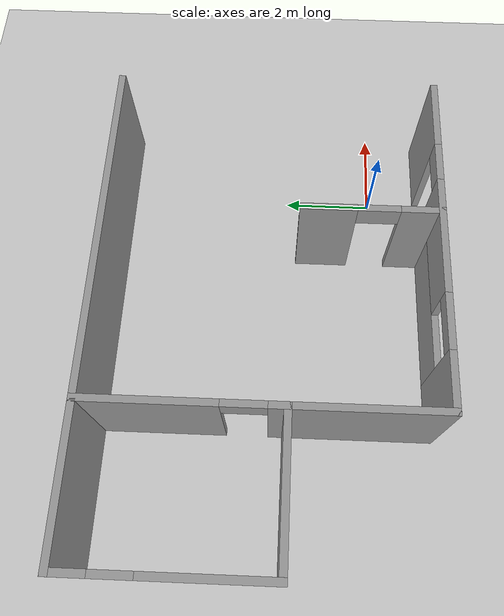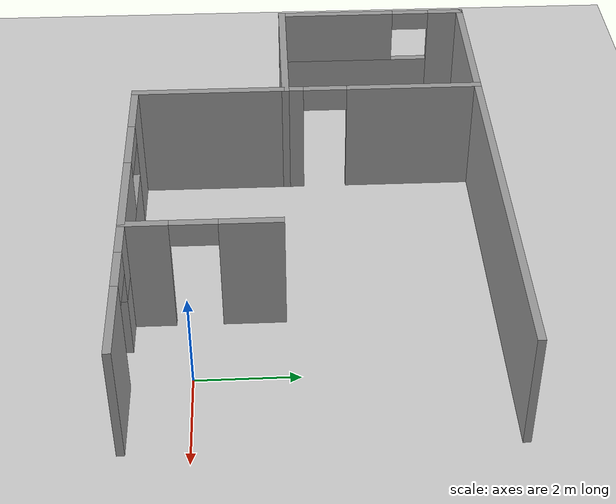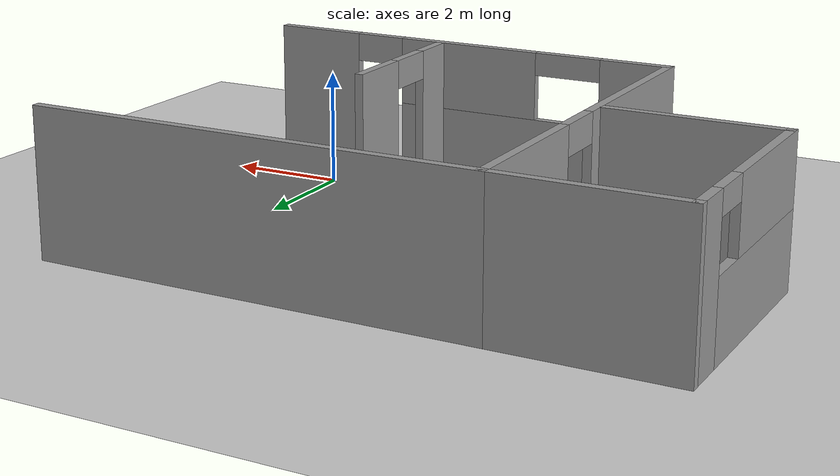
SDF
<sdf version="1.6">
 <world name="default">
  <model name="ground_plane">
   <static>1</static>
   <link name="link">
    <collision name="collision">
     <geometry><plane><normal>0 0 1</normal><size>100 100</size></plane></geometry>
     <surface><friction><ode><mu>100</mu><mu2>50</mu2></ode></friction></surface>
    </collision>
    <visual name="visual">
     <cast_shadows>0</cast_shadows>
     <geometry><plane><normal>0 0 1</normal><size>100 100</size></plane></geometry>
     <material>
      <script><uri>file://media/materials/scripts/gazebo.material</uri><name>Gazebo/Grey</name></script>
     </material>
    </visual>
   </link>
  </model>
  <model name="House">
   <link name="Wall_103">
    <pose>-6.5 6.45 0 0 -0 3.14159</pose>
    <visual name="Wall_103_Visual">
     <pose>0 0 1.25 0 -0 0</pose>
     <geometry><box><size>3.15 0.15 2.5</size></box></geometry>
     <material>
      <script><uri>file://media/materials/scripts/gazebo.material</uri><name>Gazebo/Grey</name></script>
      <ambient>1 1 1 1</ambient>
      <shader type="pixel"/>
      <diffuse>0.7 0.7 0.7 1</diffuse>
      <specular>0.01 0.01 0.01 1</specular>
      <emissive>0 0 0 1</emissive>
     </material>
     <meta><layer>0</layer></meta>
    </visual>
    <collision name="Wall_103_Collision">
     <pose>0 0 1.25 0 -0 0</pose>
     <geometry><box><size>3.15 0.15 2.5</size></box></geometry>
     <surface>
      <friction>
       <ode><mu>1</mu><mu2>1</mu2><fdir1>0 0 0</fdir1><slip1>0</slip1><slip2>0</slip2></ode>
       <torsional>
        <coefficient>1</coefficient>
        <patch_radius>0</patch_radius>
        <surface_radius>0</surface_radius>
        <use_patch_radius>1</use_patch_radius>
        <ode><slip>0</slip></ode>
       </torsional>
      </friction>
      <bounce><restitution_coefficient>0</restitution_coefficient><threshold>1e+06</threshold></bounce>
      <contact>
       <collide_without_contact>0</collide_without_contact>
       <collide_without_contact_bitmask>1</collide_without_contact_bitmask>
       <collide_bitmask>1</collide_bitmask>
       <ode>
        <soft_cfm>0</soft_cfm>
        <soft_erp>0.2</soft_erp>
        <kp>1e+13</kp>
        <kd>1</kd>
        <max_vel>0.01</max_vel>
        <min_depth>0</min_depth>
       </ode>
       <bullet>
        <split_impulse>1</split_impulse>
        <split_impulse_penetration_threshold>-0.01</split_impulse_penetration_threshold>
        <soft_cfm>0</soft_cfm>
        <soft_erp>0.2</soft_erp>
        <kp>1e+13</kp>
        <kd>1</kd>
       </bullet>
      </contact>
     </surface>
    </collision>
   </link>
   <link name="Wall_107">
    <pose>-8 4.45 0 0 0 -1.5708</pose>
    <visual name="Wall_107_Visual_0">
     <pose>-1.68247 0 1.25 0 -0 0</pose>
     <geometry><box><size>0.785055 0.15 2.5</size></box></geometry>
     <material>
      <script><uri>file://media/materials/scripts/gazebo.material</uri><name>Gazebo/Grey</name></script>
      <ambient>1 1 1 1</ambient>
      <shader type="pixel"/>
      <diffuse>0.7 0.7 0.7 1</diffuse>
      <specular>0.01 0.01 0.01 1</specular>
      <emissive>0 0 0 1</emissive>
     </material>
     <meta><layer>0</layer></meta>
    </visual>
    <visual name="Wall_107_Visual_1">
     <pose>0.392528 0 0.65 0 -0 0</pose>
     <geometry><box><size>3.36495 0.15 1.3</size></box></geometry>
     <material>
      <script><uri>file://media/materials/scripts/gazebo.material</uri><name>Gazebo/Grey</name></script>
      <ambient>1 1 1 1</ambient>
      <shader type="pixel"/>
      <diffuse>0.7 0.7 0.7 1</diffuse>
      <specular>0.01 0.01 0.01 1</specular>
      <emissive>0 0 0 1</emissive>
     </material>
     <meta><layer>0</layer></meta>
    </visual>
    <visual name="Wall_107_Visual_2">
     <pose>0.792528 0 1.9 0 -0 0</pose>
     <geometry><box><size>2.56494 0.15 1.2</size></box></geometry>
     <material>
      <script><uri>file://media/materials/scripts/gazebo.material</uri><name>Gazebo/Grey</name></script>
      <ambient>1 1 1 1</ambient>
      <shader type="pixel"/>
      <diffuse>0.7 0.7 0.7 1</diffuse>
      <specular>0.01 0.01 0.01 1</specular>
      <emissive>0 0 0 1</emissive>
     </material>
     <meta><layer>0</layer></meta>
    </visual>
    <visual name="Wall_107_Visual_3">
     <pose>-0.889945 0 2.3 0 -0 0</pose>
     <geometry><box><size>0.8 0.15 0.4</size></box></geometry>
     <material>
      <script><uri>file://media/materials/scripts/gazebo.material</uri><name>Gazebo/Grey</name></script>
      <ambient>1 1 1 1</ambient>
      <shader type="pixel"/>
      <diffuse>0.7 0.7 0.7 1</diffuse>
      <specular>0.01 0.01 0.01 1</specular>
      <emissive>0 0 0 1</emissive>
     </material>
     <meta><layer>0</layer></meta>
    </visual>
    <collision name="Wall_107_Collision_0">
     <pose>-1.68247 0 1.25 0 -0 0</pose>
     <geometry><box><size>0.785055 0.15 2.5</size></box></geometry>
     <surface>
      <friction>
       <ode><mu>1</mu><mu2>1</mu2><fdir1>0 0 0</fdir1><slip1>0</slip1><slip2>0</slip2></ode>
       <torsional>
        <coefficient>1</coefficient>
        <patch_radius>0</patch_radius>
        <surface_radius>0</surface_radius>
        <use_patch_radius>1</use_patch_radius>
        <ode><slip>0</slip></ode>
       </torsional>
      </friction>
      <bounce><restitution_coefficient>0</restitution_coefficient><threshold>1e+06</threshold></bounce>
      <contact>
       <collide_without_contact>0</collide_without_contact>
       <collide_without_contact_bitmask>1</collide_without_contact_bitmask>
       <collide_bitmask>1</collide_bitmask>
       <ode>
        <soft_cfm>0</soft_cfm>
        <soft_erp>0.2</soft_erp>
        <kp>1e+13</kp>
        <kd>1</kd>
        <max_vel>0.01</max_vel>
        <min_depth>0</min_depth>
       </ode>
       <bullet>
        <split_impulse>1</split_impulse>
        <split_impulse_penetration_threshold>-0.01</split_impulse_penetration_threshold>
        <soft_cfm>0</soft_cfm>
        <soft_erp>0.2</soft_erp>
        <kp>1e+13</kp>
        <kd>1</kd>
       </bullet>
      </contact>
     </surface>
    </collision>
    <collision name="Wall_107_Collision_1">
     <pose>0.392528 0 0.65 0 -0 0</pose>
     <geometry><box><size>3.36495 0.15 1.3</size></box></geometry>
     <surface>
      <friction>
       <ode><mu>1</mu><mu2>1</mu2><fdir1>0 0 0</fdir1><slip1>0</slip1><slip2>0</slip2></ode>
       <torsional>
        <coefficient>1</coefficient>
        <patch_radius>0</patch_radius>
        <surface_radius>0</surface_radius>
        <use_patch_radius>1</use_patch_radius>
        <ode><slip>0</slip></ode>
       </torsional>
      </friction>
      <bounce><restitution_coefficient>0</restitution_coefficient><threshold>1e+06</threshold></bounce>
      <contact>
       <collide_without_contact>0</collide_without_contact>
       <collide_without_contact_bitmask>1</collide_without_contact_bitmask>
       <collide_bitmask>1</collide_bitmask>
       <ode>
        <soft_cfm>0</soft_cfm>
        <soft_erp>0.2</soft_erp>
        <kp>1e+13</kp>
        <kd>1</kd>
        <max_vel>0.01</max_vel>
        <min_depth>0</min_depth>
       </ode>
       <bullet>
        <split_impulse>1</split_impulse>
        <split_impulse_penetration_threshold>-0.01</split_impulse_penetration_threshold>
        <soft_cfm>0</soft_cfm>
        <soft_erp>0.2</soft_erp>
        <kp>1e+13</kp>
        <kd>1</kd>
       </bullet>
      </contact>
     </surface>
    </collision>
    <collision name="Wall_107_Collision_2">
     <pose>0.792528 0 1.9 0 -0 0</pose>
     <geometry><box><size>2.56494 0.15 1.2</size></box></geometry>
     <surface>
      <friction>
       <ode><mu>1</mu><mu2>1</mu2><fdir1>0 0 0</fdir1><slip1>0</slip1><slip2>0</slip2></ode>
       <torsional>
        <coefficient>1</coefficient>
        <patch_radius>0</patch_radius>
        <surface_radius>0</surface_radius>
        <use_patch_radius>1</use_patch_radius>
        <ode><slip>0</slip></ode>
       </torsional>
      </friction>
      <bounce><restitution_coefficient>0</restitution_coefficient><threshold>1e+06</threshold></bounce>
      <contact>
       <collide_without_contact>0</collide_without_contact>
       <collide_without_contact_bitmask>1</collide_without_contact_bitmask>
       <collide_bitmask>1</collide_bitmask>
       <ode>
        <soft_cfm>0</soft_cfm>
        <soft_erp>0.2</soft_erp>
        <kp>1e+13</kp>
        <kd>1</kd>
        <max_vel>0.01</max_vel>
        <min_depth>0</min_depth>
       </ode>
       <bullet>
        <split_impulse>1</split_impulse>
        <split_impulse_penetration_threshold>-0.01</split_impulse_penetration_threshold>
        <soft_cfm>0</soft_cfm>
        <soft_erp>0.2</soft_erp>
        <kp>1e+13</kp>
        <kd>1</kd>
       </bullet>
      </contact>
     </surface>
    </collision>
    <collision name="Wall_107_Collision_3">
     <pose>-0.889945 0 2.3 0 -0 0</pose>
     <geometry><box><size>0.8 0.15 0.4</size></box></geometry>
     <surface>
      <friction>
       <ode><mu>1</mu><mu2>1</mu2><fdir1>0 0 0</fdir1><slip1>0</slip1><slip2>0</slip2></ode>
       <torsional>
        <coefficient>1</coefficient>
        <patch_radius>0</patch_radius>
        <surface_radius>0</surface_radius>
        <use_patch_radius>1</use_patch_radius>
        <ode><slip>0</slip></ode>
       </torsional>
      </friction>
      <bounce><restitution_coefficient>0</restitution_coefficient><threshold>1e+06</threshold></bounce>
      <contact>
       <collide_without_contact>0</collide_without_contact>
       <collide_without_contact_bitmask>1</collide_without_contact_bitmask>
       <collide_bitmask>1</collide_bitmask>
       <ode>
        <soft_cfm>0</soft_cfm>
        <soft_erp>0.2</soft_erp>
        <kp>1e+13</kp>
        <kd>1</kd>
        <max_vel>0.01</max_vel>
        <min_depth>0</min_depth>
       </ode>
       <bullet>
        <split_impulse>1</split_impulse>
        <split_impulse_penetration_threshold>-0.01</split_impulse_penetration_threshold>
        <soft_cfm>0</soft_cfm>
        <soft_erp>0.2</soft_erp>
        <kp>1e+13</kp>
        <kd>1</kd>
       </bullet>
      </contact>
     </surface>
    </collision>
   </link>
   <link name="Wall_109">
    <pose>-6.5 2.45 0 0 -0 0</pose>
    <visual name="Wall_109_Visual">
     <pose>0 0 1.25 0 -0 0</pose>
     <geometry><box><size>3.15 0.15 2.5</size></box></geometry>
     <material>
      <script><uri>file://media/materials/scripts/gazebo.material</uri><name>Gazebo/Grey</name></script>
      <ambient>1 1 1 1</ambient>
      <shader type="pixel"/>
      <diffuse>0.7 0.7 0.7 1</diffuse>
      <specular>0.01 0.01 0.01 1</specular>
      <emissive>0 0 0 1</emissive>
     </material>
     <meta><layer>0</layer></meta>
    </visual>
    <collision name="Wall_109_Collision">
     <pose>0 0 1.25 0 -0 0</pose>
     <geometry><box><size>3.15 0.15 2.5</size></box></geometry>
     <surface>
      <friction>
       <ode><mu>1</mu><mu2>1</mu2><fdir1>0 0 0</fdir1><slip1>0</slip1><slip2>0</slip2></ode>
       <torsional>
        <coefficient>1</coefficient>
        <patch_radius>0</patch_radius>
        <surface_radius>0</surface_radius>
        <use_patch_radius>1</use_patch_radius>
        <ode><slip>0</slip></ode>
       </torsional>
      </friction>
      <bounce><restitution_coefficient>0</restitution_coefficient><threshold>1e+06</threshold></bounce>
      <contact>
       <collide_without_contact>0</collide_without_contact>
       <collide_without_contact_bitmask>1</collide_without_contact_bitmask>
       <collide_bitmask>1</collide_bitmask>
       <ode>
        <soft_cfm>0</soft_cfm>
        <soft_erp>0.2</soft_erp>
        <kp>1e+13</kp>
        <kd>1</kd>
        <max_vel>0.01</max_vel>
        <min_depth>0</min_depth>
       </ode>
       <bullet>
        <split_impulse>1</split_impulse>
        <split_impulse_penetration_threshold>-0.01</split_impulse_penetration_threshold>
        <soft_cfm>0</soft_cfm>
        <soft_erp>0.2</soft_erp>
        <kp>1e+13</kp>
        <kd>1</kd>
       </bullet>
      </contact>
     </surface>
    </collision>
   </link>
   <link name="Wall_77">
    <pose>-1.25 6.45 0 0 -0 0</pose>
    <visual name="Wall_77_Visual">
     <pose>0 0 1.25 0 -0 0</pose>
     <geometry><box><size>7.65 0.15 2.5</size></box></geometry>
     <material>
      <script><uri>file://media/materials/scripts/gazebo.material</uri><name>Gazebo/Grey</name></script>
      <ambient>1 1 1 1</ambient>
      <shader type="pixel"/>
      <diffuse>0.7 0.7 0.7 1</diffuse>
      <specular>0.01 0.01 0.01 1</specular>
      <emissive>0 0 0 1</emissive>
     </material>
     <meta><layer>0</layer></meta>
    </visual>
    <collision name="Wall_77_Collision">
     <pose>0 0 1.25 0 -0 0</pose>
     <geometry><box><size>7.65 0.15 2.5</size></box></geometry>
     <surface>
      <friction>
       <ode><mu>1</mu><mu2>1</mu2><fdir1>0 0 0</fdir1><slip1>0</slip1><slip2>0</slip2></ode>
       <torsional>
        <coefficient>1</coefficient>
        <patch_radius>0</patch_radius>
        <surface_radius>0</surface_radius>
        <use_patch_radius>1</use_patch_radius>
        <ode><slip>0</slip></ode>
       </torsional>
      </friction>
      <bounce><restitution_coefficient>0</restitution_coefficient><threshold>1e+06</threshold></bounce>
      <contact>
       <collide_without_contact>0</collide_without_contact>
       <collide_without_contact_bitmask>1</collide_without_contact_bitmask>
       <collide_bitmask>1</collide_bitmask>
       <ode>
        <soft_cfm>0</soft_cfm>
        <soft_erp>0.2</soft_erp>
        <kp>1e+13</kp>
        <kd>1</kd>
        <max_vel>0.01</max_vel>
        <min_depth>0</min_depth>
       </ode>
       <bullet>
        <split_impulse>1</split_impulse>
        <split_impulse_penetration_threshold>-0.01</split_impulse_penetration_threshold>
        <soft_cfm>0</soft_cfm>
        <soft_erp>0.2</soft_erp>
        <kp>1e+13</kp>
        <kd>1</kd>
       </bullet>
      </contact>
     </surface>
    </collision>
   </link>
   <link name="Wall_93">
    <pose>-5 2.9 0 0 0 -1.5708</pose>
    <visual name="Wall_93_Visual_0">
     <pose>-2.22291 0 1.25 0 -0 0</pose>
     <geometry><box><size>2.80417 0.15 2.5</size></box></geometry>
     <material>
      <script><uri>file://media/materials/scripts/gazebo.material</uri><name>Gazebo/Grey</name></script>
      <ambient>1 1 1 1</ambient>
      <shader type="pixel"/>
      <diffuse>0.7 0.7 0.7 1</diffuse>
      <specular>0.01 0.01 0.01 1</specular>
      <emissive>0 0 0 1</emissive>
     </material>
     <meta><layer>0</layer></meta>
    </visual>
    <visual name="Wall_93_Visual_1">
     <pose>1.85209 0 1.25 0 -0 0</pose>
     <geometry><box><size>3.54583 0.15 2.5</size></box></geometry>
     <material>
      <script><uri>file://media/materials/scripts/gazebo.material</uri><name>Gazebo/Grey</name></script>
      <ambient>1 1 1 1</ambient>
      <shader type="pixel"/>
      <diffuse>0.7 0.7 0.7 1</diffuse>
      <specular>0.01 0.01 0.01 1</specular>
      <emissive>0 0 0 1</emissive>
     </material>
     <meta><layer>0</layer></meta>
    </visual>
    <visual name="Wall_93_Visual_2">
     <pose>-0.370826 0 2.25 0 -0 0</pose>
     <geometry><box><size>0.9 0.15 0.5</size></box></geometry>
     <material>
      <script><uri>file://media/materials/scripts/gazebo.material</uri><name>Gazebo/Grey</name></script>
      <ambient>1 1 1 1</ambient>
      <shader type="pixel"/>
      <diffuse>0.7 0.7 0.7 1</diffuse>
      <specular>0.01 0.01 0.01 1</specular>
      <emissive>0 0 0 1</emissive>
     </material>
     <meta><layer>0</layer></meta>
    </visual>
    <collision name="Wall_93_Collision_0">
     <pose>-2.22291 0 1.25 0 -0 0</pose>
     <geometry><box><size>2.80417 0.15 2.5</size></box></geometry>
     <surface>
      <friction>
       <ode><mu>1</mu><mu2>1</mu2><fdir1>0 0 0</fdir1><slip1>0</slip1><slip2>0</slip2></ode>
       <torsional>
        <coefficient>1</coefficient>
        <patch_radius>0</patch_radius>
        <surface_radius>0</surface_radius>
        <use_patch_radius>1</use_patch_radius>
        <ode><slip>0</slip></ode>
       </torsional>
      </friction>
      <bounce><restitution_coefficient>0</restitution_coefficient><threshold>1e+06</threshold></bounce>
      <contact>
       <collide_without_contact>0</collide_without_contact>
       <collide_without_contact_bitmask>1</collide_without_contact_bitmask>
       <collide_bitmask>1</collide_bitmask>
       <ode>
        <soft_cfm>0</soft_cfm>
        <soft_erp>0.2</soft_erp>
        <kp>1e+13</kp>
        <kd>1</kd>
        <max_vel>0.01</max_vel>
        <min_depth>0</min_depth>
       </ode>
       <bullet>
        <split_impulse>1</split_impulse>
        <split_impulse_penetration_threshold>-0.01</split_impulse_penetration_threshold>
        <soft_cfm>0</soft_cfm>
        <soft_erp>0.2</soft_erp>
        <kp>1e+13</kp>
        <kd>1</kd>
       </bullet>
      </contact>
     </surface>
    </collision>
    <collision name="Wall_93_Collision_1">
     <pose>1.85209 0 1.25 0 -0 0</pose>
     <geometry><box><size>3.54583 0.15 2.5</size></box></geometry>
     <surface>
      <friction>
       <ode><mu>1</mu><mu2>1</mu2><fdir1>0 0 0</fdir1><slip1>0</slip1><slip2>0</slip2></ode>
       <torsional>
        <coefficient>1</coefficient>
        <patch_radius>0</patch_radius>
        <surface_radius>0</surface_radius>
        <use_patch_radius>1</use_patch_radius>
        <ode><slip>0</slip></ode>
       </torsional>
      </friction>
      <bounce><restitution_coefficient>0</restitution_coefficient><threshold>1e+06</threshold></bounce>
      <contact>
       <collide_without_contact>0</collide_without_contact>
       <collide_without_contact_bitmask>1</collide_without_contact_bitmask>
       <collide_bitmask>1</collide_bitmask>
       <ode>
        <soft_cfm>0</soft_cfm>
        <soft_erp>0.2</soft_erp>
        <kp>1e+13</kp>
        <kd>1</kd>
        <max_vel>0.01</max_vel>
        <min_depth>0</min_depth>
       </ode>
       <bullet>
        <split_impulse>1</split_impulse>
        <split_impulse_penetration_threshold>-0.01</split_impulse_penetration_threshold>
        <soft_cfm>0</soft_cfm>
        <soft_erp>0.2</soft_erp>
        <kp>1e+13</kp>
        <kd>1</kd>
       </bullet>
      </contact>
     </surface>
    </collision>
    <collision name="Wall_93_Collision_2">
     <pose>-0.370826 0 2.25 0 -0 0</pose>
     <geometry><box><size>0.9 0.15 0.5</size></box></geometry>
     <surface>
      <friction>
       <ode><mu>1</mu><mu2>1</mu2><fdir1>0 0 0</fdir1><slip1>0</slip1><slip2>0</slip2></ode>
       <torsional>
        <coefficient>1</coefficient>
        <patch_radius>0</patch_radius>
        <surface_radius>0</surface_radius>
        <use_patch_radius>1</use_patch_radius>
        <ode><slip>0</slip></ode>
       </torsional>
      </friction>
      <bounce><restitution_coefficient>0</restitution_coefficient><threshold>1e+06</threshold></bounce>
      <contact>
       <collide_without_contact>0</collide_without_contact>
       <collide_without_contact_bitmask>1</collide_without_contact_bitmask>
       <collide_bitmask>1</collide_bitmask>
       <ode>
        <soft_cfm>0</soft_cfm>
        <soft_erp>0.2</soft_erp>
        <kp>1e+13</kp>
        <kd>1</kd>
        <max_vel>0.01</max_vel>
        <min_depth>0</min_depth>
       </ode>
       <bullet>
        <split_impulse>1</split_impulse>
        <split_impulse_penetration_threshold>-0.01</split_impulse_penetration_threshold>
        <soft_cfm>0</soft_cfm>
        <soft_erp>0.2</soft_erp>
        <kp>1e+13</kp>
        <kd>1</kd>
       </bullet>
      </contact>
     </surface>
    </collision>
   </link>
   <link name="Wall_95">
    <pose>-1.25 -0.65 0 0 -0 0</pose>
    <visual name="Wall_95_Visual_0">
     <pose>-3.1837 0 1.25 0 -0 0</pose>
     <geometry><box><size>1.2826 0.15 2.5</size></box></geometry>
     <material>
      <script><uri>file://media/materials/scripts/gazebo.material</uri><name>Gazebo/Grey</name></script>
      <ambient>1 1 1 1</ambient>
      <shader type="pixel"/>
      <diffuse>0.7 0.7 0.7 1</diffuse>
      <specular>0.01 0.01 0.01 1</specular>
      <emissive>0 0 0 1</emissive>
     </material>
     <meta><layer>0</layer></meta>
    </visual>
    <visual name="Wall_95_Visual_1">
     <pose>3.01052 0 1.25 0 -0 0</pose>
     <geometry><box><size>1.62897 0.15 2.5</size></box></geometry>
     <material>
      <script><uri>file://media/materials/scripts/gazebo.material</uri><name>Gazebo/Grey</name></script>
      <ambient>1 1 1 1</ambient>
      <shader type="pixel"/>
      <diffuse>0.7 0.7 0.7 1</diffuse>
      <specular>0.01 0.01 0.01 1</specular>
      <emissive>0 0 0 1</emissive>
     </material>
     <meta><layer>0</layer></meta>
    </visual>
    <visual name="Wall_95_Visual_2">
     <pose>-0.623182 0 0.65 0 -0 0</pose>
     <geometry><box><size>3.83843 0.15 1.3</size></box></geometry>
     <material>
      <script><uri>file://media/materials/scripts/gazebo.material</uri><name>Gazebo/Grey</name></script>
      <ambient>1 1 1 1</ambient>
      <shader type="pixel"/>
      <diffuse>0.7 0.7 0.7 1</diffuse>
      <specular>0.01 0.01 0.01 1</specular>
      <emissive>0 0 0 1</emissive>
     </material>
     <meta><layer>0</layer></meta>
    </visual>
    <visual name="Wall_95_Visual_3">
     <pose>-0.023182 0 1.9 0 -0 0</pose>
     <geometry><box><size>2.63843 0.15 1.2</size></box></geometry>
     <material>
      <script><uri>file://media/materials/scripts/gazebo.material</uri><name>Gazebo/Grey</name></script>
      <ambient>1 1 1 1</ambient>
      <shader type="pixel"/>
      <diffuse>0.7 0.7 0.7 1</diffuse>
      <specular>0.01 0.01 0.01 1</specular>
      <emissive>0 0 0 1</emissive>
     </material>
     <meta><layer>0</layer></meta>
    </visual>
    <visual name="Wall_95_Visual_4">
     <pose>1.74603 0 2.25 0 -0 0</pose>
     <geometry><box><size>0.9 0.15 0.5</size></box></geometry>
     <material>
      <script><uri>file://media/materials/scripts/gazebo.material</uri><name>Gazebo/Grey</name></script>
      <ambient>1 1 1 1</ambient>
      <shader type="pixel"/>
      <diffuse>0.7 0.7 0.7 1</diffuse>
      <specular>0.01 0.01 0.01 1</specular>
      <emissive>0 0 0 1</emissive>
     </material>
     <meta><layer>0</layer></meta>
    </visual>
    <visual name="Wall_95_Visual_5">
     <pose>-1.9424 0 2.3 0 -0 0</pose>
     <geometry><box><size>1.2 0.15 0.4</size></box></geometry>
     <material>
      <script><uri>file://media/materials/scripts/gazebo.material</uri><name>Gazebo/Grey</name></script>
      <ambient>1 1 1 1</ambient>
      <shader type="pixel"/>
      <diffuse>0.7 0.7 0.7 1</diffuse>
      <specular>0.01 0.01 0.01 1</specular>
      <emissive>0 0 0 1</emissive>
     </material>
     <meta><layer>0</layer></meta>
    </visual>
    <collision name="Wall_95_Collision_0">
     <pose>-3.1837 0 1.25 0 -0 0</pose>
     <geometry><box><size>1.2826 0.15 2.5</size></box></geometry>
     <surface>
      <friction>
       <ode><mu>1</mu><mu2>1</mu2><fdir1>0 0 0</fdir1><slip1>0</slip1><slip2>0</slip2></ode>
       <torsional>
        <coefficient>1</coefficient>
        <patch_radius>0</patch_radius>
        <surface_radius>0</surface_radius>
        <use_patch_radius>1</use_patch_radius>
        <ode><slip>0</slip></ode>
       </torsional>
      </friction>
      <bounce><restitution_coefficient>0</restitution_coefficient><threshold>1e+06</threshold></bounce>
      <contact>
       <collide_without_contact>0</collide_without_contact>
       <collide_without_contact_bitmask>1</collide_without_contact_bitmask>
       <collide_bitmask>1</collide_bitmask>
       <ode>
        <soft_cfm>0</soft_cfm>
        <soft_erp>0.2</soft_erp>
        <kp>1e+13</kp>
        <kd>1</kd>
        <max_vel>0.01</max_vel>
        <min_depth>0</min_depth>
       </ode>
       <bullet>
        <split_impulse>1</split_impulse>
        <split_impulse_penetration_threshold>-0.01</split_impulse_penetration_threshold>
        <soft_cfm>0</soft_cfm>
        <soft_erp>0.2</soft_erp>
        <kp>1e+13</kp>
        <kd>1</kd>
       </bullet>
      </contact>
     </surface>
    </collision>
    <collision name="Wall_95_Collision_1">
     <pose>3.01052 0 1.25 0 -0 0</pose>
     <geometry><box><size>1.62897 0.15 2.5</size></box></geometry>
     <surface>
      <friction>
       <ode><mu>1</mu><mu2>1</mu2><fdir1>0 0 0</fdir1><slip1>0</slip1><slip2>0</slip2></ode>
       <torsional>
        <coefficient>1</coefficient>
        <patch_radius>0</patch_radius>
        <surface_radius>0</surface_radius>
        <use_patch_radius>1</use_patch_radius>
        <ode><slip>0</slip></ode>
       </torsional>
      </friction>
      <bounce><restitution_coefficient>0</restitution_coefficient><threshold>1e+06</threshold></bounce>
      <contact>
       <collide_without_contact>0</collide_without_contact>
       <collide_without_contact_bitmask>1</collide_without_contact_bitmask>
       <collide_bitmask>1</collide_bitmask>
       <ode>
        <soft_cfm>0</soft_cfm>
        <soft_erp>0.2</soft_erp>
        <kp>1e+13</kp>
        <kd>1</kd>
        <max_vel>0.01</max_vel>
        <min_depth>0</min_depth>
       </ode>
       <bullet>
        <split_impulse>1</split_impulse>
        <split_impulse_penetration_threshold>-0.01</split_impulse_penetration_threshold>
        <soft_cfm>0</soft_cfm>
        <soft_erp>0.2</soft_erp>
        <kp>1e+13</kp>
        <kd>1</kd>
       </bullet>
      </contact>
     </surface>
    </collision>
    <collision name="Wall_95_Collision_2">
     <pose>-0.623182 0 0.65 0 -0 0</pose>
     <geometry><box><size>3.83843 0.15 1.3</size></box></geometry>
     <surface>
      <friction>
       <ode><mu>1</mu><mu2>1</mu2><fdir1>0 0 0</fdir1><slip1>0</slip1><slip2>0</slip2></ode>
       <torsional>
        <coefficient>1</coefficient>
        <patch_radius>0</patch_radius>
        <surface_radius>0</surface_radius>
        <use_patch_radius>1</use_patch_radius>
        <ode><slip>0</slip></ode>
       </torsional>
      </friction>
      <bounce><restitution_coefficient>0</restitution_coefficient><threshold>1e+06</threshold></bounce>
      <contact>
       <collide_without_contact>0</collide_without_contact>
       <collide_without_contact_bitmask>1</collide_without_contact_bitmask>
       <collide_bitmask>1</collide_bitmask>
       <ode>
        <soft_cfm>0</soft_cfm>
        <soft_erp>0.2</soft_erp>
        <kp>1e+13</kp>
        <kd>1</kd>
        <max_vel>0.01</max_vel>
        <min_depth>0</min_depth>
       </ode>
       <bullet>
        <split_impulse>1</split_impulse>
        <split_impulse_penetration_threshold>-0.01</split_impulse_penetration_threshold>
        <soft_cfm>0</soft_cfm>
        <soft_erp>0.2</soft_erp>
        <kp>1e+13</kp>
        <kd>1</kd>
       </bullet>
      </contact>
     </surface>
    </collision>
    <collision name="Wall_95_Collision_3">
     <pose>-0.023182 0 1.9 0 -0 0</pose>
     <geometry><box><size>2.63843 0.15 1.2</size></box></geometry>
     <surface>
      <friction>
       <ode><mu>1</mu><mu2>1</mu2><fdir1>0 0 0</fdir1><slip1>0</slip1><slip2>0</slip2></ode>
       <torsional>
        <coefficient>1</coefficient>
        <patch_radius>0</patch_radius>
        <surface_radius>0</surface_radius>
        <use_patch_radius>1</use_patch_radius>
        <ode><slip>0</slip></ode>
       </torsional>
      </friction>
      <bounce><restitution_coefficient>0</restitution_coefficient><threshold>1e+06</threshold></bounce>
      <contact>
       <collide_without_contact>0</collide_without_contact>
       <collide_without_contact_bitmask>1</collide_without_contact_bitmask>
       <collide_bitmask>1</collide_bitmask>
       <ode>
        <soft_cfm>0</soft_cfm>
        <soft_erp>0.2</soft_erp>
        <kp>1e+13</kp>
        <kd>1</kd>
        <max_vel>0.01</max_vel>
        <min_depth>0</min_depth>
       </ode>
       <bullet>
        <split_impulse>1</split_impulse>
        <split_impulse_penetration_threshold>-0.01</split_impulse_penetration_threshold>
        <soft_cfm>0</soft_cfm>
        <soft_erp>0.2</soft_erp>
        <kp>1e+13</kp>
        <kd>1</kd>
       </bullet>
      </contact>
     </surface>
    </collision>
    <collision name="Wall_95_Collision_4">
     <pose>1.74603 0 2.25 0 -0 0</pose>
     <geometry><box><size>0.9 0.15 0.5</size></box></geometry>
     <surface>
      <friction>
       <ode><mu>1</mu><mu2>1</mu2><fdir1>0 0 0</fdir1><slip1>0</slip1><slip2>0</slip2></ode>
       <torsional>
        <coefficient>1</coefficient>
        <patch_radius>0</patch_radius>
        <surface_radius>0</surface_radius>
        <use_patch_radius>1</use_patch_radius>
        <ode><slip>0</slip></ode>
       </torsional>
      </friction>
      <bounce><restitution_coefficient>0</restitution_coefficient><threshold>1e+06</threshold></bounce>
      <contact>
       <collide_without_contact>0</collide_without_contact>
       <collide_without_contact_bitmask>1</collide_without_contact_bitmask>
       <collide_bitmask>1</collide_bitmask>
       <ode>
        <soft_cfm>0</soft_cfm>
        <soft_erp>0.2</soft_erp>
        <kp>1e+13</kp>
        <kd>1</kd>
        <max_vel>0.01</max_vel>
        <min_depth>0</min_depth>
       </ode>
       <bullet>
        <split_impulse>1</split_impulse>
        <split_impulse_penetration_threshold>-0.01</split_impulse_penetration_threshold>
        <soft_cfm>0</soft_cfm>
        <soft_erp>0.2</soft_erp>
        <kp>1e+13</kp>
        <kd>1</kd>
       </bullet>
      </contact>
     </surface>
    </collision>
    <collision name="Wall_95_Collision_5">
     <pose>-1.9424 0 2.3 0 -0 0</pose>
     <geometry><box><size>1.2 0.15 0.4</size></box></geometry>
     <surface>
      <friction>
       <ode><mu>1</mu><mu2>1</mu2><fdir1>0 0 0</fdir1><slip1>0</slip1><slip2>0</slip2></ode>
       <torsional>
        <coefficient>1</coefficient>
        <patch_radius>0</patch_radius>
        <surface_radius>0</surface_radius>
        <use_patch_radius>1</use_patch_radius>
        <ode><slip>0</slip></ode>
       </torsional>
      </friction>
      <bounce><restitution_coefficient>0</restitution_coefficient><threshold>1e+06</threshold></bounce>
      <contact>
       <collide_without_contact>0</collide_without_contact>
       <collide_without_contact_bitmask>1</collide_without_contact_bitmask>
       <collide_bitmask>1</collide_bitmask>
       <ode>
        <soft_cfm>0</soft_cfm>
        <soft_erp>0.2</soft_erp>
        <kp>1e+13</kp>
        <kd>1</kd>
        <max_vel>0.01</max_vel>
        <min_depth>0</min_depth>
       </ode>
       <bullet>
        <split_impulse>1</split_impulse>
        <split_impulse_penetration_threshold>-0.01</split_impulse_penetration_threshold>
        <soft_cfm>0</soft_cfm>
        <soft_erp>0.2</soft_erp>
        <kp>1e+13</kp>
        <kd>1</kd>
       </bullet>
      </contact>
     </surface>
    </collision>
   </link>
   <link name="Wall_97">
    <pose>-0.73 0.8 0 0 -0 1.5708</pose>
    <visual name="Wall_97_Visual_0">
     <pose>-1.05653 0 1.25 0 -0 0</pose>
     <geometry><box><size>0.936939 0.15 2.5</size></box></geometry>
     <material>
      <script><uri>file://media/materials/scripts/gazebo.material</uri><name>Gazebo/Grey</name></script>
      <ambient>1 1 1 1</ambient>
      <shader type="pixel"/>
      <diffuse>0.7 0.7 0.7 1</diffuse>
      <specular>0.01 0.01 0.01 1</specular>
      <emissive>0 0 0 1</emissive>
     </material>
     <meta><layer>0</layer></meta>
    </visual>
    <visual name="Wall_97_Visual_1">
     <pose>0.918469 0 1.25 0 -0 0</pose>
     <geometry><box><size>1.21306 0.15 2.5</size></box></geometry>
     <material>
      <script><uri>file://media/materials/scripts/gazebo.material</uri><name>Gazebo/Grey</name></script>
      <ambient>1 1 1 1</ambient>
      <shader type="pixel"/>
      <diffuse>0.7 0.7 0.7 1</diffuse>
      <specular>0.01 0.01 0.01 1</specular>
      <emissive>0 0 0 1</emissive>
     </material>
     <meta><layer>0</layer></meta>
    </visual>
    <visual name="Wall_97_Visual_2">
     <pose>-0.138061 0 2.25 0 -0 0</pose>
     <geometry><box><size>0.9 0.15 0.5</size></box></geometry>
     <material>
      <script><uri>file://media/materials/scripts/gazebo.material</uri><name>Gazebo/Grey</name></script>
      <ambient>1 1 1 1</ambient>
      <shader type="pixel"/>
      <diffuse>0.7 0.7 0.7 1</diffuse>
      <specular>0.01 0.01 0.01 1</specular>
      <emissive>0 0 0 1</emissive>
     </material>
     <meta><layer>0</layer></meta>
    </visual>
    <collision name="Wall_97_Collision_0">
     <pose>-1.05653 0 1.25 0 -0 0</pose>
     <geometry><box><size>0.936939 0.15 2.5</size></box></geometry>
     <surface>
      <friction>
       <ode><mu>1</mu><mu2>1</mu2><fdir1>0 0 0</fdir1><slip1>0</slip1><slip2>0</slip2></ode>
       <torsional>
        <coefficient>1</coefficient>
        <patch_radius>0</patch_radius>
        <surface_radius>0</surface_radius>
        <use_patch_radius>1</use_patch_radius>
        <ode><slip>0</slip></ode>
       </torsional>
      </friction>
      <bounce><restitution_coefficient>0</restitution_coefficient><threshold>1e+06</threshold></bounce>
      <contact>
       <collide_without_contact>0</collide_without_contact>
       <collide_without_contact_bitmask>1</collide_without_contact_bitmask>
       <collide_bitmask>1</collide_bitmask>
       <ode>
        <soft_cfm>0</soft_cfm>
        <soft_erp>0.2</soft_erp>
        <kp>1e+13</kp>
        <kd>1</kd>
        <max_vel>0.01</max_vel>
        <min_depth>0</min_depth>
       </ode>
       <bullet>
        <split_impulse>1</split_impulse>
        <split_impulse_penetration_threshold>-0.01</split_impulse_penetration_threshold>
        <soft_cfm>0</soft_cfm>
        <soft_erp>0.2</soft_erp>
        <kp>1e+13</kp>
        <kd>1</kd>
       </bullet>
      </contact>
     </surface>
    </collision>
    <collision name="Wall_97_Collision_1">
     <pose>0.918469 0 1.25 0 -0 0</pose>
     <geometry><box><size>1.21306 0.15 2.5</size></box></geometry>
     <surface>
      <friction>
       <ode><mu>1</mu><mu2>1</mu2><fdir1>0 0 0</fdir1><slip1>0</slip1><slip2>0</slip2></ode>
       <torsional>
        <coefficient>1</coefficient>
        <patch_radius>0</patch_radius>
        <surface_radius>0</surface_radius>
        <use_patch_radius>1</use_patch_radius>
        <ode><slip>0</slip></ode>
       </torsional>
      </friction>
      <bounce><restitution_coefficient>0</restitution_coefficient><threshold>1e+06</threshold></bounce>
      <contact>
       <collide_without_contact>0</collide_without_contact>
       <collide_without_contact_bitmask>1</collide_without_contact_bitmask>
       <collide_bitmask>1</collide_bitmask>
       <ode>
        <soft_cfm>0</soft_cfm>
        <soft_erp>0.2</soft_erp>
        <kp>1e+13</kp>
        <kd>1</kd>
        <max_vel>0.01</max_vel>
        <min_depth>0</min_depth>
       </ode>
       <bullet>
        <split_impulse>1</split_impulse>
        <split_impulse_penetration_threshold>-0.01</split_impulse_penetration_threshold>
        <soft_cfm>0</soft_cfm>
        <soft_erp>0.2</soft_erp>
        <kp>1e+13</kp>
        <kd>1</kd>
       </bullet>
      </contact>
     </surface>
    </collision>
    <collision name="Wall_97_Collision_2">
     <pose>-0.138061 0 2.25 0 -0 0</pose>
     <geometry><box><size>0.9 0.15 0.5</size></box></geometry>
     <surface>
      <friction>
       <ode><mu>1</mu><mu2>1</mu2><fdir1>0 0 0</fdir1><slip1>0</slip1><slip2>0</slip2></ode>
       <torsional>
        <coefficient>1</coefficient>
        <patch_radius>0</patch_radius>
        <surface_radius>0</surface_radius>
        <use_patch_radius>1</use_patch_radius>
        <ode><slip>0</slip></ode>
       </torsional>
      </friction>
      <bounce><restitution_coefficient>0</restitution_coefficient><threshold>1e+06</threshold></bounce>
      <contact>
       <collide_without_contact>0</collide_without_contact>
       <collide_without_contact_bitmask>1</collide_without_contact_bitmask>
       <collide_bitmask>1</collide_bitmask>
       <ode>
        <soft_cfm>0</soft_cfm>
        <soft_erp>0.2</soft_erp>
        <kp>1e+13</kp>
        <kd>1</kd>
        <max_vel>0.01</max_vel>
        <min_depth>0</min_depth>
       </ode>
       <bullet>
        <split_impulse>1</split_impulse>
        <split_impulse_penetration_threshold>-0.01</split_impulse_penetration_threshold>
        <soft_cfm>0</soft_cfm>
        <soft_erp>0.2</soft_erp>
        <kp>1e+13</kp>
        <kd>1</kd>
       </bullet>
      </contact>
     </surface>
    </collision>
   </link>
   <static>1</static>
   <pose>-0.825981 -0.56573 0 0 -0 0</pose>
  </model>
 </world>
</sdf>
